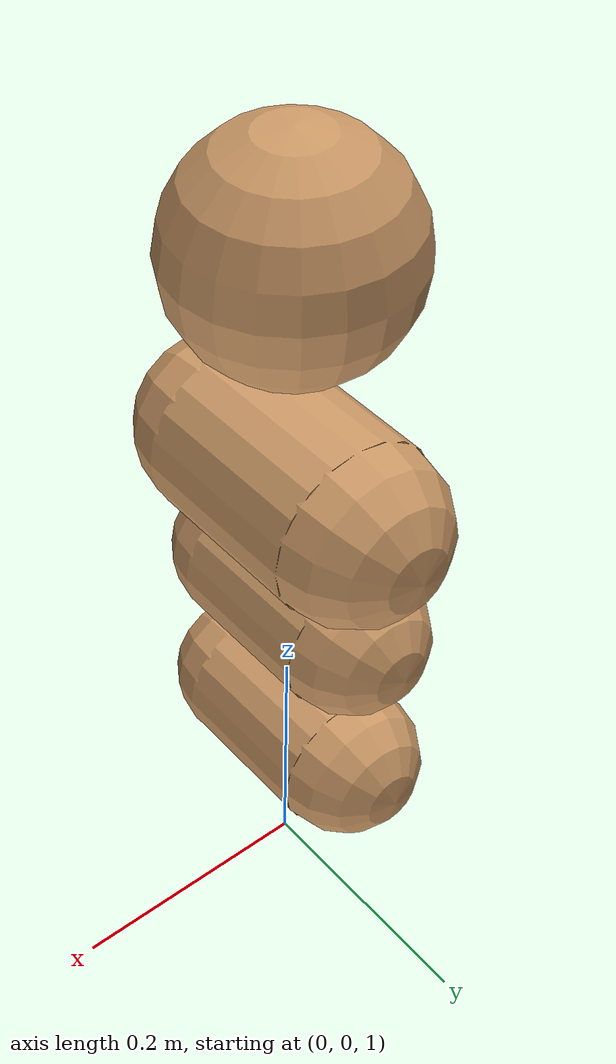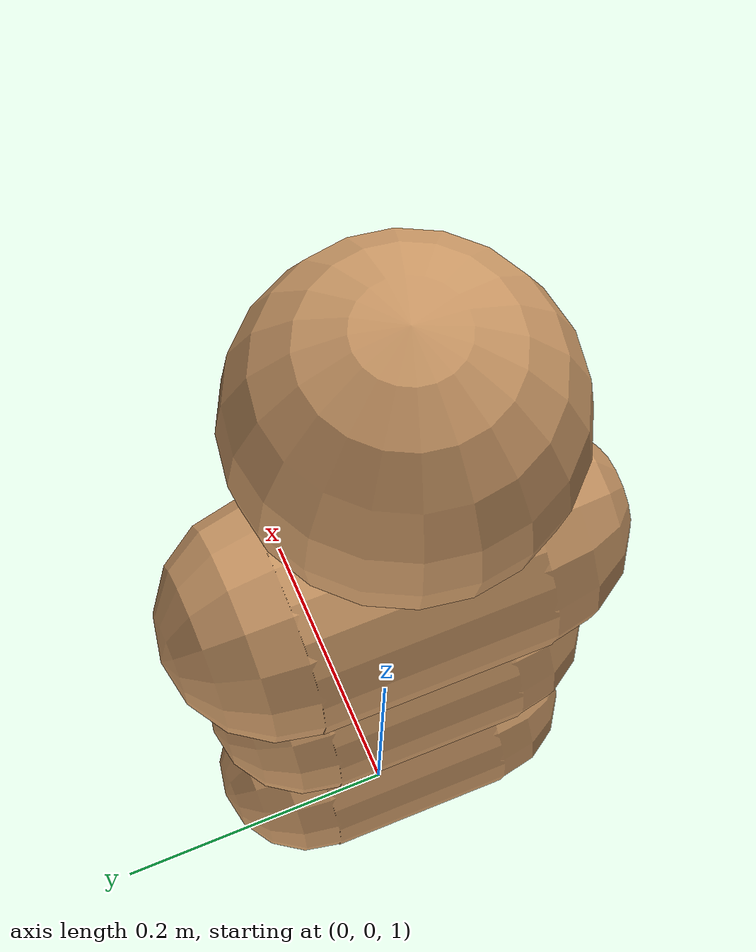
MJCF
<mujoco model="humanoid">
    <compiler angle="degree" inertiafromgeom="true"/>
    <default>
        <joint armature="1" damping="1" limited="true"/>
        <geom conaffinity="1" condim="1" contype="1" margin="0.001" material="geom" rgba="0.8 0.6 .4 1"/>
        <motor ctrllimited="true" ctrlrange="-.4 .4"/>
    </default>
    <option integrator="RK4" iterations="50" solver="PGS" timestep="0.01">
    </option>
    <size nkey="5" nuser_geom="1"/>
    <visual>
        <map fogend="5" fogstart="3"/>
    </visual>
    <asset>
        <texture builtin="gradient" height="100" rgb1=".4 .5 .6" rgb2="0 0 0" type="skybox" width="100"/>
        <texture builtin="flat" height="1278" mark="cross" markrgb="1 1 1" name="texgeom" random="0.01" rgb1="0.8 0.6 0.4" rgb2="0.8 0.6 0.4" type="cube" width="127"/>
        <texture builtin="checker" height="100" name="texplane" rgb1="0 0 0" rgb2="0.8 0.8 0.8" type="2d" width="100"/>
        <material name="MatPlane" reflectance="0.5" shininess="1" specular="1" texrepeat="60 60" texture="texplane"/>
        <material name="geom" texture="texgeom" texuniform="true"/>
    </asset>
    <worldbody>
        <light cutoff="100" diffuse="1 1 1" dir="-0 0 -1.3" directional="true" exponent="1" pos="0 0 1.3" specular=".1 .1 .1"/>
        <geom condim="3" friction="1 1 1" material="MatPlane" name="floor" pos="0 0 0" rgba="0.8 0.9 0.8 1" size="20 20 0.125" type="plane"/>
        <body name="torso" pos="0 0 1.4">
            <camera name="track" mode="trackcom" pos="0 -4 0" xyaxes="1 0 0 0 0 1"/>
            <joint armature="0" damping="0" limited="false" name="root" pos="0 0 0" stiffness="0" type="free"/>
            <geom fromto="0 -.07 0 0 .07 0" name="torso1" size="0.07" type="capsule"/>
            <geom name="head" pos="0 0 .19" size=".09" type="sphere" user="258"/>
            <geom fromto="-.01 -.06 -.12 -.01 .06 -.12" name="uwaist" size="0.06" type="capsule"/>
            <body name="lwaist" pos="-.01 0 -0.260" quat="1.000 0 -0.002 0">
                <geom fromto="0 -.06 0 0 .06 0" name="lwaist" size="0.06" type="capsule"/>
                <!--joint armature="0.02" axis="0 0 1" damping="5" name="abdomen_z" pos="0 0 0.065" range="-45 45" stiffness="20" type="hinge"/-->
            </body>
        </body>
    </worldbody>
</mujoco>
